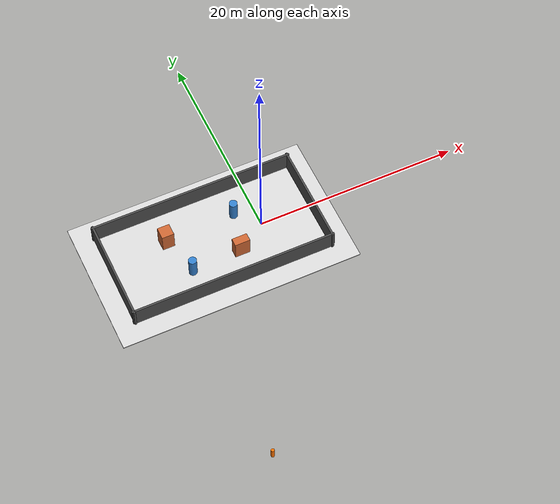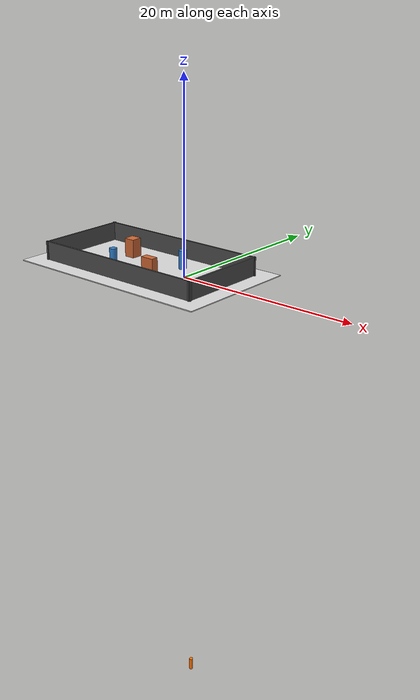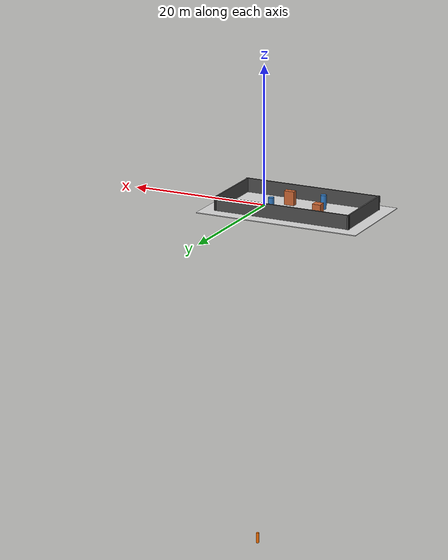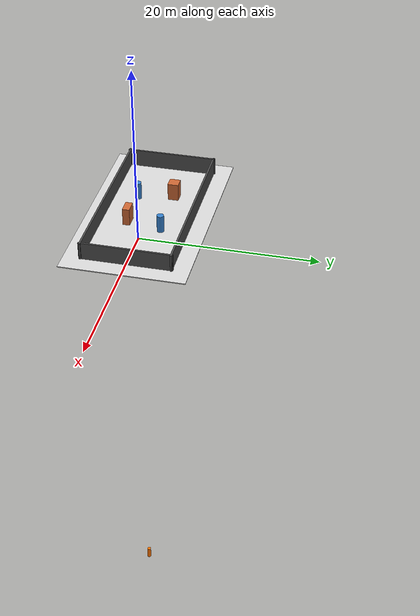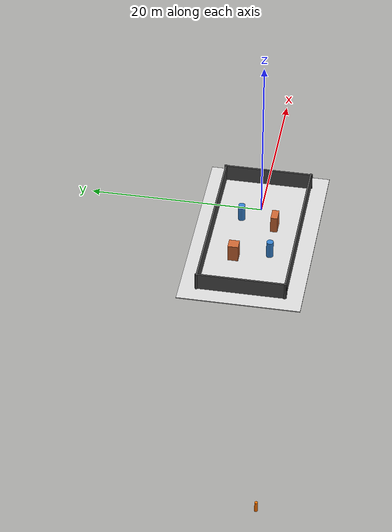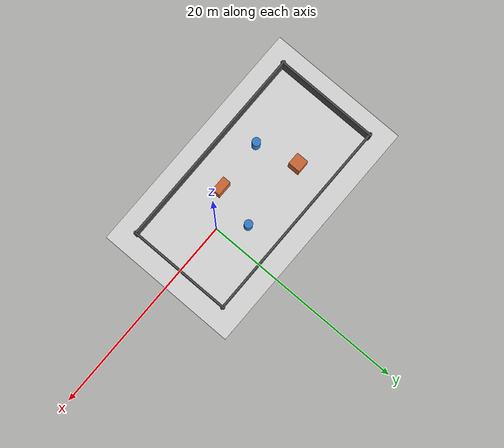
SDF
<sdf version="1.9">
 <world name="arena_obstacle">
  <gravity>0 0 -9.81</gravity>
  <plugin filename="gz-sim-physics-system" name="gz::sim::systems::Physics"/>
  <plugin filename="gz-sim-user-commands-system" name="gz::sim::systems::UserCommands"/>
  <plugin filename="gz-sim-scene-broadcaster-system" name="gz::sim::systems::SceneBroadcaster"/>
  <scene><shadows>false</shadows></scene>
  <physics name="default_physics" type="ode">
   <max_step_size>0.004</max_step_size>
   <real_time_factor>1.0</real_time_factor>
  </physics>
  <plugin filename="gz-sim-sensors-system" name="gz::sim::systems::Sensors">
   <render_engine>ogre2</render_engine>
  </plugin>
  <plugin filename="gz-sim-imu-system" name="gz::sim::systems::Imu"/>
  <light type="directional" name="sun">
   <cast_shadows>false</cast_shadows>
   <pose>0 0 10 0 0 0</pose>
   <diffuse>0.8 0.8 0.8 1</diffuse>
   <specular>0.2 0.2 0.2 1</specular>
   <direction>-0.5 0.1 -0.9</direction>
  </light>
  <model name="ground">
   <static>true</static>
   <link name="link">
    <collision name="collision"><geometry><box><size>24.0 14.0 0.1</size></box></geometry></collision>
    <visual name="visual">
     <geometry><box><size>24.0 14.0 0.1</size></box></geometry>
     <material><ambient>0.85 0.85 0.85 1</ambient><diffuse>0.85 0.85 0.85 1</diffuse></material>
    </visual>
   </link>
   <pose>-5.0 0.0 -0.05 0 0 0</pose>
  </model>
  <model name="wall_west">
   <static>true</static>
   <link name="link">
    <collision name="collision"><geometry><box><size>0.2 10.4 2.0</size></box></geometry></collision>
    <visual name="visual">
     <geometry><box><size>0.2 10.4 2.0</size></box></geometry>
     <material><ambient>0.3 0.3 0.3 1</ambient><diffuse>0.3 0.3 0.3 1</diffuse></material>
    </visual>
   </link>
   <pose>-15.0 0.0 1.0 0 0 0</pose>
  </model>
  <model name="wall_east">
   <static>true</static>
   <link name="link">
    <collision name="collision"><geometry><box><size>0.2 10.4 2.0</size></box></geometry></collision>
    <visual name="visual">
     <geometry><box><size>0.2 10.4 2.0</size></box></geometry>
     <material><ambient>0.3 0.3 0.3 1</ambient><diffuse>0.3 0.3 0.3 1</diffuse></material>
    </visual>
   </link>
   <pose>5.0 0.0 1.0 0 0 0</pose>
  </model>
  <model name="wall_south">
   <static>true</static>
   <link name="link">
    <collision name="collision"><geometry><box><size>20.4 0.2 2.0</size></box></geometry></collision>
    <visual name="visual">
     <geometry><box><size>20.4 0.2 2.0</size></box></geometry>
     <material><ambient>0.3 0.3 0.3 1</ambient><diffuse>0.3 0.3 0.3 1</diffuse></material>
    </visual>
   </link>
   <pose>-5.0 -5.0 1.0 0 0 0</pose>
  </model>
  <model name="wall_north">
   <static>true</static>
   <link name="link">
    <collision name="collision"><geometry><box><size>20.4 0.2 2.0</size></box></geometry></collision>
    <visual name="visual">
     <geometry><box><size>20.4 0.2 2.0</size></box></geometry>
     <material><ambient>0.3 0.3 0.3 1</ambient><diffuse>0.3 0.3 0.3 1</diffuse></material>
    </visual>
   </link>
   <pose>-5.0 5.0 1.0 0 0 0</pose>
  </model>
  <model name="static_box_A">
   <static>true</static>
   <link name="link">
    <collision name="collision"><geometry><box><size>1.2 1.2 2.0</size></box></geometry></collision>
    <visual name="visual">
     <geometry><box><size>1.2 1.2 2.0</size></box></geometry>
     <material><ambient>0.8 0.4 0.2 1</ambient><diffuse>0.8 0.4 0.2 1</diffuse></material>
    </visual>
   </link>
   <pose>-9.0 1.8 1.0 0 0 0</pose>
  </model>
  <model name="static_cylinder_B">
   <static>true</static>
   <link name="link">
    <collision name="collision">
     <geometry><cylinder><radius>0.4</radius><length>2.0</length></cylinder></geometry>
    </collision>
    <visual name="visual">
     <geometry><cylinder><radius>0.4</radius><length>2.0</length></cylinder></geometry>
     <material><ambient>0.2 0.5 0.8 1</ambient><diffuse>0.2 0.5 0.8 1</diffuse></material>
    </visual>
   </link>
   <pose>-8.0 -2.2 1.0 0 0 0</pose>
  </model>
  <model name="static_box_C">
   <static>true</static>
   <link name="link">
    <collision name="collision"><geometry><box><size>1.5 0.8 2.0</size></box></geometry></collision>
    <visual name="visual">
     <geometry><box><size>1.5 0.8 2.0</size></box></geometry>
     <material><ambient>0.8 0.4 0.2 1</ambient><diffuse>0.8 0.4 0.2 1</diffuse></material>
    </visual>
   </link>
   <pose>-3.0 -2.0 1.0 0 0 0</pose>
  </model>
  <model name="static_cylinder_D">
   <static>true</static>
   <link name="link">
    <collision name="collision">
     <geometry><cylinder><radius>0.4</radius><length>2.0</length></cylinder></geometry>
    </collision>
    <visual name="visual">
     <geometry><cylinder><radius>0.4</radius><length>2.0</length></cylinder></geometry>
     <material><ambient>0.2 0.5 0.8 1</ambient><diffuse>0.2 0.5 0.8 1</diffuse></material>
    </visual>
   </link>
   <pose>-2.0 2.0 1.0 0 0 0</pose>
  </model>
  <plugin filename="librvo2_human_system.so" name="custom_corridor::RVO2HumanSystem">
   <human_count>1</human_count>
   <robot_name>burger</robot_name>
   <robot_radius>0.28</robot_radius>
   <human_radius>0.28</human_radius>
   <corridor_mode>false</corridor_mode>
   <politeness_balance_point>0.60</politeness_balance_point>
   <randomize_politeness>true</randomize_politeness>
   <visual_z>1.02</visual_z>
   <proxy_z>0.85</proxy_z>
  </plugin>
  <model name="human_01_proxy">
   <pose>1.0 0.0 0.85 0 0 3.14159</pose>
   <link name="link">
    <gravity>false</gravity>
    <kinematic>true</kinematic>
    <collision name="collision">
     <geometry><cylinder><radius>0.28</radius><length>1.70</length></cylinder></geometry>
    </collision>
    <visual name="visual">
     <geometry><cylinder><radius>0.001</radius><length>0.001</length></cylinder></geometry>
     <transparency>1.0</transparency>
    </visual>
   </link>
  </model>
  <model name="dynamic_object">
   <pose>1.0 0.0 -50.0 0 0 3.14159</pose>
   <link name="link">
    <gravity>false</gravity>
    <kinematic>true</kinematic>
    <collision name="collision">
     <geometry><cylinder><radius>0.22</radius><length>1.70</length></cylinder></geometry>
    </collision>
    <visual name="body_visual">
     <geometry><cylinder><radius>0.22</radius><length>1.50</length></cylinder></geometry>
     <material><ambient>1.0 0.45 0.0 1</ambient><diffuse>1.0 0.45 0.0 1</diffuse></material>
    </visual>
   </link>
  </model>
 </world>
</sdf>
